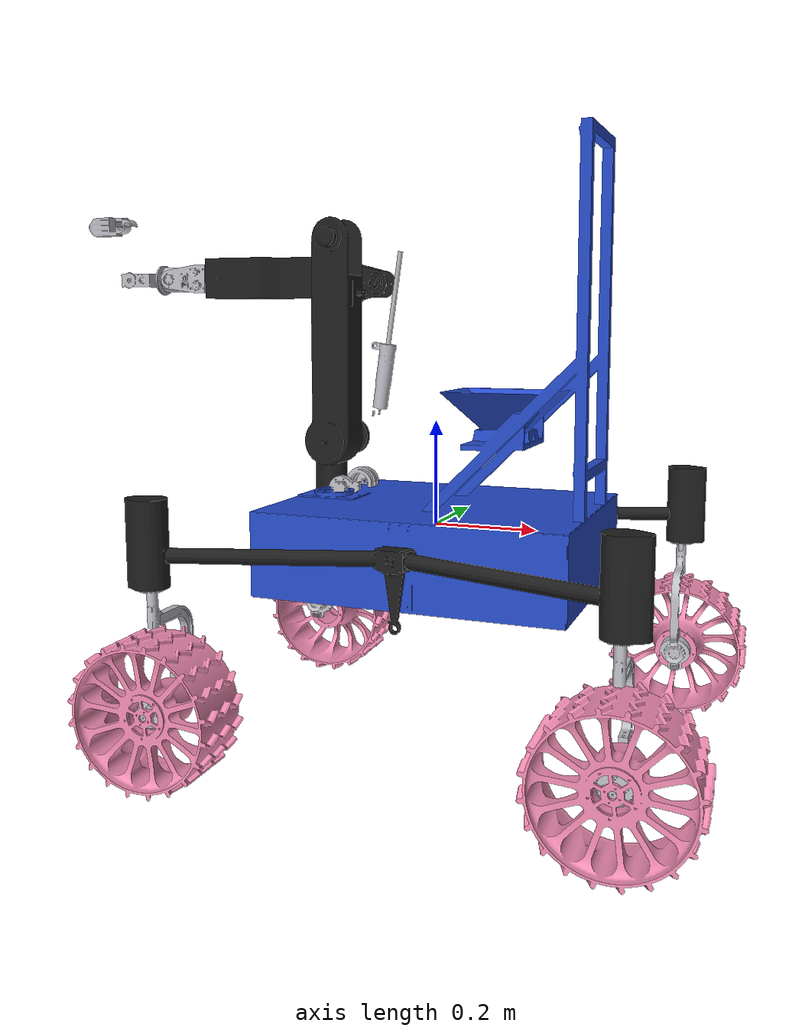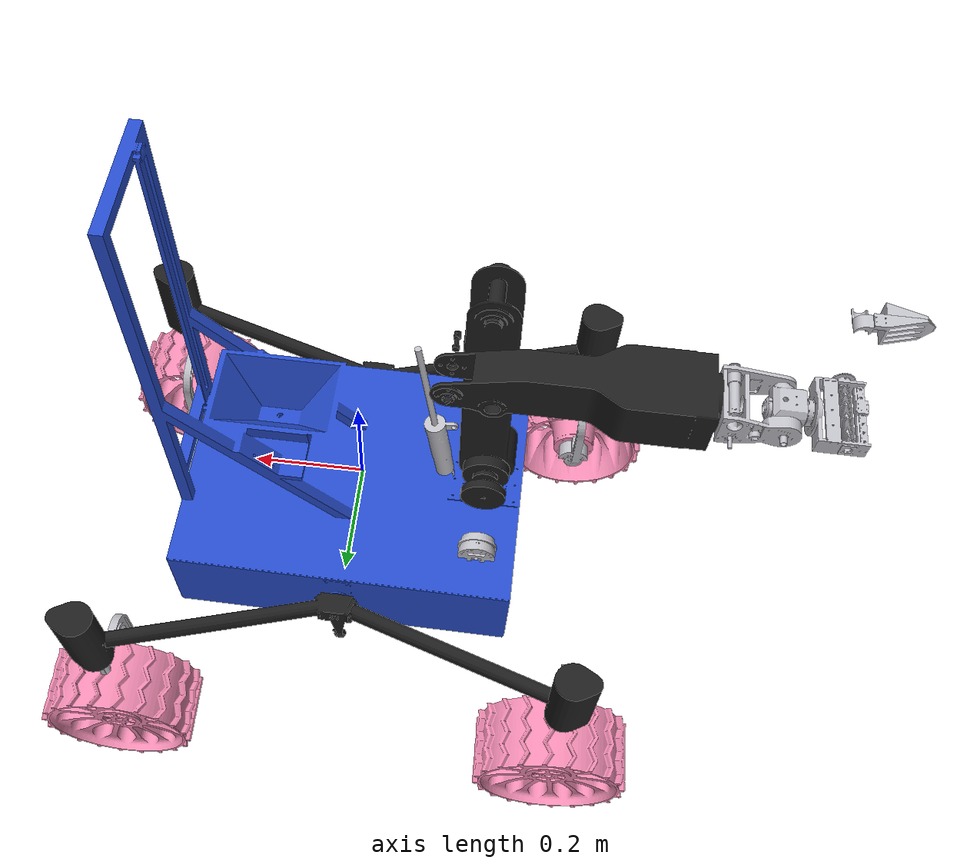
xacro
<?xml version="1.0"?>
<robot xmlns:xacro="http://www.ros.org/wiki/xacro" name="kerby">
    <xacro:arg name="initial_positions_file" default="initial_positions.yaml" />

    <!-- Import kerby urdf file -->
    <xacro:include filename="$(find Assemblage_description)/urdf/Assemblage.urdf.xacro" />

    <!-- Import control_xacro -->
    <xacro:include filename="kerby.ros2_control.xacro" />

    <xacro:kerby_arm_ros2_control name="KerbyArmSystem" initial_positions_file="$(arg initial_positions_file)"/>

    <xacro:kerby_base_ros2_control name="KerbyBaseSystem" initial_positions_file="$(arg initial_positions_file)"/>

</robot>

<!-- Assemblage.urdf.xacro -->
<robot name="kerby" xmlns:xacro="http://www.ros.org/wiki/xacro">

<xacro:include filename="$(find Assemblage_description)/urdf/materials.xacro" />
<xacro:include filename="$(find Assemblage_description)/urdf/Assemblage.trans" />
<xacro:include filename="$(find Assemblage_description)/urdf/Assemblage.gazebo" />

<xacro:property name="rpm_to_Radps" value="${2*pi/60.0}" />     <!-- rotations per minute to Rad per second conversion -->
<xacro:property name="velocity_scaling" value="1.0" />     <!-- allows to scale all max velocities down at once -->

<xacro:macro name="aaa_joint_limits" params="lower:=0.0 upper:=0.0 velocity:=${rpm_to_Radps} effort:=100.0">
  <limit lower="${lower}" upper="${upper}" velocity="${velocity}" effort="${effort}"/>
</xacro:macro>

<xacro:property name="joint1_limits">
  <xacro:aaa_joint_limits lower="${-1.5*pi}" upper="${1.5*pi}" velocity="${3 * rpm_to_Radps * velocity_scaling}" />
</xacro:property>

<xacro:property name="joint2_limits">
  <xacro:aaa_joint_limits lower="${-pi}" upper="${pi/2}" velocity="${1 * rpm_to_Radps * velocity_scaling}" />
</xacro:property>

<xacro:property name="joint3_limits">
  <xacro:aaa_joint_limits lower="${-pi/4}" upper="${pi/4}" velocity="${1.5 * rpm_to_Radps * velocity_scaling}" />
</xacro:property>

<xacro:property name="joint4_limits">
  <xacro:aaa_joint_limits lower="${-2*pi}" upper="${2*pi}" velocity="${6 * rpm_to_Radps * velocity_scaling}" />
</xacro:property>

<xacro:property name="joint5_limits">
  <xacro:aaa_joint_limits lower="${-pi/2}" upper="${pi/2}" velocity="${2 * rpm_to_Radps * velocity_scaling}" />
</xacro:property>

<xacro:property name="joint6_limits">
  <xacro:aaa_joint_limits lower="${-pi}" upper="${pi}" velocity="${6 * rpm_to_Radps * velocity_scaling}" />
</xacro:property>

<link name="base_link">
  <inertial>
    <origin xyz="0.05362398614035063 0.01974617698532859 0.037120813316089823" rpy="0 0 0"/>
    <mass value="6.257043020156179"/>
    <inertia ixx="0.340644" iyy="0.466541" izz="0.402706" ixy="0.000337" iyz="0.00055" ixz="-0.092411"/>
  </inertial>
  <visual>
    <origin xyz="0 0 0" rpy="0 0 0"/>
    <geometry>
      <mesh filename="package://Assemblage_description/meshes/base_link.stl" scale="0.001 0.001 0.001"/>
    </geometry>
    <material name="blue"/>
  </visual>
  <collision>
    <origin xyz="0 0 0" rpy="0 0 0"/>
    <geometry>
      <mesh filename="package://Assemblage_description/meshes/base_link.stl" scale="0.001 0.001 0.001"/>
    </geometry>
  </collision>
</link>

<link name="steering_1">
  <inertial>
    <origin xyz="-0.01189644601781037 -0.036027929982466456 -0.2129618322901442" rpy="0 0 0"/>
    <mass value="0.3543584805415501"/>
    <inertia ixx="0.003558" iyy="0.003121" izz="0.000562" ixy="2e-06" iyz="-0.000206" ixz="-0.000178"/>
  </inertial>
  <visual>
    <origin xyz="-0.421384 -0.393882 0.063562" rpy="0 0 0"/>
    <geometry>
      <mesh filename="package://Assemblage_description/meshes/steering_1.stl" scale="0.001 0.001 0.001"/>
    </geometry>
    <material name="silver"/>
  </visual>
  <collision>
    <origin xyz="-0.421384 -0.393882 0.063562" rpy="0 0 0"/>
    <geometry>
      <mesh filename="package://Assemblage_description/meshes/steering_1.stl" scale="0.001 0.001 0.001"/>
    </geometry>
  </collision>
</link>

<link name="steering_2">
  <inertial>
    <origin xyz="0.011896575272170529 0.03602765244982159 -0.21296112839152875" rpy="0 0 0"/>
    <mass value="0.3543584805415501"/>
    <inertia ixx="0.003558" iyy="0.003121" izz="0.000562" ixy="2e-06" iyz="0.000206" ixz="0.000178"/>
  </inertial>
  <visual>
    <origin xyz="-0.42341 0.353934 0.012408" rpy="0 0 0"/>
    <geometry>
      <mesh filename="package://Assemblage_description/meshes/steering_2.stl" scale="0.001 0.001 0.001"/>
    </geometry>
    <material name="silver"/>
  </visual>
  <collision>
    <origin xyz="-0.42341 0.353934 0.012408" rpy="0 0 0"/>
    <geometry>
      <mesh filename="package://Assemblage_description/meshes/steering_2.stl" scale="0.001 0.001 0.001"/>
    </geometry>
  </collision>
</link>

<link name="steering_3">
  <inertial>
    <origin xyz="0.011896795779964109 0.03602765244982109 -0.21296183229014454" rpy="0 0 0"/>
    <mass value="0.3543584805415501"/>
    <inertia ixx="0.003558" iyy="0.003121" izz="0.000562" ixy="2e-06" iyz="0.000206" ixz="0.000178"/>
  </inertial>
  <visual>
    <origin xyz="0.408171 0.353934 0.063562" rpy="0 0 0"/>
    <geometry>
      <mesh filename="package://Assemblage_description/meshes/steering_3.stl" scale="0.001 0.001 0.001"/>
    </geometry>
    <material name="silver"/>
  </visual>
  <collision>
    <origin xyz="0.408171 0.353934 0.063562" rpy="0 0 0"/>
    <geometry>
      <mesh filename="package://Assemblage_description/meshes/steering_3.stl" scale="0.001 0.001 0.001"/>
    </geometry>
  </collision>
</link>

<link name="steering_4">
  <inertial>
    <origin xyz="-0.011896225510015512 -0.036027929982466234 -0.21296112839152861" rpy="0 0 0"/>
    <mass value="0.3543584805415501"/>
    <inertia ixx="0.003558" iyy="0.003121" izz="0.000562" ixy="2e-06" iyz="-0.000206" ixz="-0.000178"/>
  </inertial>
  <visual>
    <origin xyz="0.410197 -0.393882 0.012408" rpy="0 0 0"/>
    <geometry>
      <mesh filename="package://Assemblage_description/meshes/steering_4.stl" scale="0.001 0.001 0.001"/>
    </geometry>
    <material name="silver"/>
  </visual>
  <collision>
    <origin xyz="0.410197 -0.393882 0.012408" rpy="0 0 0"/>
    <geometry>
      <mesh filename="package://Assemblage_description/meshes/steering_4.stl" scale="0.001 0.001 0.001"/>
    </geometry>
  </collision>
</link>

<link name="wheel3_1">
  <inertial>
    <origin xyz="0.0003394916280188287 -0.010196510227617639 -2.006330920018007e-05" rpy="0 0 0"/>
    <mass value="1.592763813314383"/>
    <inertia ixx="0.010896" iyy="0.018605" izz="0.010887" ixy="-0.000257" iyz="1.6e-05" ixz="-0.0"/>
  </inertial>
  <visual>
    <origin xyz="0.42733 -0.410572 0.281864" rpy="0 0 0"/>
    <geometry>
      <mesh filename="package://Assemblage_description/meshes/wheel3_1.stl" scale="0.001 0.001 0.001"/>
    </geometry>
    <material name="pink"/>
  </visual>
  <collision>
    <origin xyz="0.42733 -0.410572 0.281864" rpy="0 0 0"/>
    <geometry>
      <mesh filename="package://Assemblage_description/meshes/wheel3_1.stl" scale="0.001 0.001 0.001"/>
    </geometry>
  </collision>
</link>

<link name="wheel4_1">
  <inertial>
    <origin xyz="0.0003392711202230836 -0.010196510227618527 -1.9767207815879484e-05" rpy="0 0 0"/>
    <mass value="1.592763813314383"/>
    <inertia ixx="0.010896" iyy="0.018605" izz="0.010887" ixy="-0.000257" iyz="1.6e-05" ixz="-0.0"/>
  </inertial>
  <visual>
    <origin xyz="-0.404251 -0.410572 0.333019" rpy="0 0 0"/>
    <geometry>
      <mesh filename="package://Assemblage_description/meshes/wheel4_1.stl" scale="0.001 0.001 0.001"/>
    </geometry>
    <material name="pink"/>
  </visual>
  <collision>
    <origin xyz="-0.404251 -0.410572 0.333019" rpy="0 0 0"/>
    <geometry>
      <mesh filename="package://Assemblage_description/meshes/wheel4_1.stl" scale="0.001 0.001 0.001"/>
    </geometry>
  </collision>
</link>

<link name="wheel2_1">
  <inertial>
    <origin xyz="-0.0003399213580693172 0.010197232694972913 -1.9767207816323573e-05" rpy="0 0 0"/>
    <mass value="1.592763813314383"/>
    <inertia ixx="0.010896" iyy="0.018605" izz="0.010887" ixy="-0.000257" iyz="-1.6e-05" ixz="0.0"/>
  </inertial>
  <visual>
    <origin xyz="0.391037 0.370625 0.333019" rpy="0 0 0"/>
    <geometry>
      <mesh filename="package://Assemblage_description/meshes/wheel2_1.stl" scale="0.001 0.001 0.001"/>
    </geometry>
    <material name="pink"/>
  </visual>
  <collision>
    <origin xyz="0.391037 0.370625 0.333019" rpy="0 0 0"/>
    <geometry>
      <mesh filename="package://Assemblage_description/meshes/wheel2_1.stl" scale="0.001 0.001 0.001"/>
    </geometry>
  </collision>
</link>

<link name="wheel1_1">
  <inertial>
    <origin xyz="-0.0003391418658636458 0.010197232694973468 -2.0063309200568646e-05" rpy="0 0 0"/>
    <mass value="1.592763813314383"/>
    <inertia ixx="0.010896" iyy="0.018605" izz="0.010887" ixy="-0.000257" iyz="-1.6e-05" ixz="0.0"/>
  </inertial>
  <visual>
    <origin xyz="-0.440543 0.370625 0.281864" rpy="0 0 0"/>
    <geometry>
      <mesh filename="package://Assemblage_description/meshes/wheel1_1.stl" scale="0.001 0.001 0.001"/>
    </geometry>
    <material name="pink"/>
  </visual>
  <collision>
    <origin xyz="-0.440543 0.370625 0.281864" rpy="0 0 0"/>
    <geometry>
      <mesh filename="package://Assemblage_description/meshes/wheel1_1.stl" scale="0.001 0.001 0.001"/>
    </geometry>
  </collision>
</link>

<link name="hd_link2_1">
  <inertial>
    <origin xyz="0.007428383283974271 0.060838810370171845 0.14389716626077925" rpy="0 0 0"/>
    <mass value="2.4452075265656514"/>
    <inertia ixx="0.038674" iyy="0.03827" izz="0.003075" ixy="7.8e-05" iyz="0.001607" ixz="-0.00107"/>
  </inertial>
  <visual>
    <origin xyz="0.228643 0.037726 -0.152484" rpy="0 0 0"/>
    <geometry>
      <mesh filename="package://Assemblage_description/meshes/hd_link2_1.stl" scale="0.001 0.001 0.001"/>
    </geometry>
    <material name="black"/>
  </visual>
  <collision>
    <origin xyz="0.228643 0.037726 -0.152484" rpy="0 0 0"/>
    <geometry>
      <mesh filename="package://Assemblage_description/meshes/hd_link2_1.stl" scale="0.001 0.001 0.001"/>
    </geometry>
  </collision>
</link>

<link name="hd_link3_1">
  <inertial>
    <origin xyz="-0.18506431602380205 -0.028188690485378982 0.03515465538516083" rpy="0 0 0"/>
    <mass value="0.3993227194340243"/>
    <inertia ixx="0.000842" iyy="0.00625" izz="0.00637" ixy="4.5e-05" iyz="-5e-06" ixz="0.000238"/>
  </inertial>
  <visual>
    <origin xyz="0.2165 -0.050274 -0.552396" rpy="0 0 0"/>
    <geometry>
      <mesh filename="package://Assemblage_description/meshes/hd_link3_1.stl" scale="0.001 0.001 0.001"/>
    </geometry>
    <material name="black"/>
  </visual>
  <collision>
    <origin xyz="0.2165 -0.050274 -0.552396" rpy="0 0 0"/>
    <geometry>
      <mesh filename="package://Assemblage_description/meshes/hd_link3_1.stl" scale="0.001 0.001 0.001"/>
    </geometry>
  </collision>
</link>

<link name="hd_link4_1">
  <inertial>
    <origin xyz="-0.02651321084424607 0.002896584112952065 -0.0003217450612928996" rpy="0 0 0"/>
    <mass value="0.16590781468918114"/>
    <inertia ixx="0.000197" iyy="0.000349" izz="0.000476" ixy="3.9e-05" iyz="5e-06" ixz="4e-06"/>
  </inertial>
  <visual>
    <origin xyz="0.531508 -0.02063 -0.590536" rpy="0 0 0"/>
    <geometry>
      <mesh filename="package://Assemblage_description/meshes/hd_link4_1.stl" scale="0.001 0.001 0.001"/>
    </geometry>
    <material name="silver"/>
  </visual>
  <collision>
    <origin xyz="0.531508 -0.02063 -0.590536" rpy="0 0 0"/>
    <geometry>
      <mesh filename="package://Assemblage_description/meshes/hd_link4_1.stl" scale="0.001 0.001 0.001"/>
    </geometry>
  </collision>
</link>

<link name="hd_link5_1">
  <inertial>
    <origin xyz="-0.0032697164246294763 0.03846028201984416 -9.33050693235904e-05" rpy="0 0 0"/>
    <mass value="0.06877842327462745"/>
    <inertia ixx="4.9e-05" iyy="2.9e-05" izz="4.3e-05" ixy="1e-06" iyz="0.0" ixz="-0.0"/>
  </inertial>
  <visual>
    <origin xyz="0.625201 0.02137 -0.591679" rpy="0 0 0"/>
    <geometry>
      <mesh filename="package://Assemblage_description/meshes/hd_link5_1.stl" scale="0.001 0.001 0.001"/>
    </geometry>
    <material name="silver"/>
  </visual>
  <collision>
    <origin xyz="0.625201 0.02137 -0.591679" rpy="0 0 0"/>
    <geometry>
      <mesh filename="package://Assemblage_description/meshes/hd_link5_1.stl" scale="0.001 0.001 0.001"/>
    </geometry>
  </collision>
</link>

<link name="hd_link6_1">
  <inertial>
    <origin xyz="-0.03519419436746607 -0.0007187354689699374 0.0009221743273718497" rpy="0 0 0"/>
    <mass value="0.11153016933793788"/>
    <inertia ixx="0.000117" iyy="0.000166" izz="0.000263" ixy="-2e-06" iyz="-1e-06" ixz="1e-06"/>
  </inertial>
  <visual>
    <origin xyz="0.652201 -0.02059 -0.591797" rpy="0 0 0"/>
    <geometry>
      <mesh filename="package://Assemblage_description/meshes/hd_link6_1.stl" scale="0.001 0.001 0.001"/>
    </geometry>
    <material name="silver"/>
  </visual>
  <collision>
    <origin xyz="0.652201 -0.02059 -0.591797" rpy="0 0 0"/>
    <geometry>
      <mesh filename="package://Assemblage_description/meshes/hd_link6_1.stl" scale="0.001 0.001 0.001"/>
    </geometry>
  </collision>
</link>

<link name="hd_finger2_1">
  <inertial>
    <origin xyz="0.47666706754454413 -0.7361417133269437 -0.01622358994727202" rpy="0 0 0"/>
    <mass value="0.025342855198124774"/>
    <inertia ixx="4e-06" iyy="1.8e-05" izz="1.6e-05" ixy="-2e-06" iyz="-0.0" ixz="-2e-06"/>
  </inertial>
  <visual>
    <origin xyz="1.231487 -0.764267 -0.611515" rpy="0 0 0"/>
    <geometry>
      <mesh filename="package://Assemblage_description/meshes/hd_finger2_1.stl" scale="0.001 0.001 0.001"/>
    </geometry>
    <material name="silver"/>
  </visual>
  <collision>
    <origin xyz="1.231487 -0.764267 -0.611515" rpy="0 0 0"/>
    <geometry>
      <mesh filename="package://Assemblage_description/meshes/hd_finger2_1.stl" scale="0.001 0.001 0.001"/>
    </geometry>
  </collision>
</link>

<link name="hd_finger1_1">
  <inertial>
    <origin xyz="0.4527983426832546 -0.7504874421753438 -0.06638458975098571" rpy="0 0 0"/>
    <mass value="0.025342855198124774"/>
    <inertia ixx="4e-06" iyy="1.8e-05" izz="1.6e-05" ixy="2e-06" iyz="-0.0" ixz="2e-06"/>
  </inertial>
  <visual>
    <origin xyz="1.208101 -0.764188 -0.655601" rpy="0 0 0"/>
    <geometry>
      <mesh filename="package://Assemblage_description/meshes/hd_finger1_1.stl" scale="0.001 0.001 0.001"/>
    </geometry>
    <material name="silver"/>
  </visual>
  <collision>
    <origin xyz="1.208101 -0.764188 -0.655601" rpy="0 0 0"/>
    <geometry>
      <mesh filename="package://Assemblage_description/meshes/hd_finger1_1.stl" scale="0.001 0.001 0.001"/>
    </geometry>
  </collision>
</link>

<link name="hd_motor_j3_1">
  <inertial>
    <origin xyz="-0.3146867524268133 0.14188869096939155 0.25591208107402835" rpy="0 0 0"/>
    <mass value="0.11925838600046076"/>
    <inertia ixx="0.00051" iyy="0.000525" izz="2.9e-05" ixy="-0.0" iyz="-0.0" ixz="-8.7e-05"/>
  </inertial>
  <visual>
    <origin xyz="-0.173508 0.122615 -0.149258" rpy="0 0 0"/>
    <geometry>
      <mesh filename="package://Assemblage_description/meshes/hd_motor_j3_1.stl" scale="0.001 0.001 0.001"/>
    </geometry>
    <material name="silver"/>
  </visual>
  <collision>
    <origin xyz="-0.173508 0.122615 -0.149258" rpy="0 0 0"/>
    <geometry>
      <mesh filename="package://Assemblage_description/meshes/hd_motor_j3_1.stl" scale="0.001 0.001 0.001"/>
    </geometry>
  </collision>
</link>

<link name="pivot_droit_1">
  <inertial>
    <origin xyz="0.0009668399350314201 0.11623489359260658 0.013375805290350871" rpy="0 0 0"/>
    <mass value="1.6615144825592312"/>
    <inertia ixx="0.007103" iyy="0.220618" izz="0.220639" ixy="-5.6e-05" iyz="-0.000815" ixz="0.013196"/>
  </inertial>
  <visual>
    <origin xyz="-0.006607 -0.250474 0.021516" rpy="0 0 0"/>
    <geometry>
      <mesh filename="package://Assemblage_description/meshes/pivot_droit_1.stl" scale="0.001 0.001 0.001"/>
    </geometry>
    <material name="black"/>
  </visual>
  <collision>
    <origin xyz="-0.006607 -0.250474 0.021516" rpy="0 0 0"/>
    <geometry>
      <mesh filename="package://Assemblage_description/meshes/pivot_droit_1.stl" scale="0.001 0.001 0.001"/>
    </geometry>
  </collision>
</link>

<link name="pivot_gauche_1">
  <inertial>
    <origin xyz="-0.0009674901728771402 -0.11623517112525206 0.013375805290350576" rpy="0 0 0"/>
    <mass value="1.6615144825592312"/>
    <inertia ixx="0.007103" iyy="0.220618" izz="0.220639" ixy="-5.6e-05" iyz="0.000815" ixz="-0.013196"/>
  </inertial>
  <visual>
    <origin xyz="-0.006607 0.210526 0.021516" rpy="0 0 0"/>
    <geometry>
      <mesh filename="package://Assemblage_description/meshes/pivot_gauche_1.stl" scale="0.001 0.001 0.001"/>
    </geometry>
    <material name="black"/>
  </visual>
  <collision>
    <origin xyz="-0.006607 0.210526 0.021516" rpy="0 0 0"/>
    <geometry>
      <mesh filename="package://Assemblage_description/meshes/pivot_gauche_1.stl" scale="0.001 0.001 0.001"/>
    </geometry>
  </collision>
</link>

<link name="hd_link1_1">
  <inertial>
    <origin xyz="0.0001907779404468346 0.014210297972432132 0.0484216801173539" rpy="0 0 0"/>
    <mass value="0.3391136619658369"/>
    <inertia ixx="0.001801" iyy="0.001217" izz="0.00078" ixy="1e-05" iyz="-0.000142" ixz="-8e-06"/>
  </inertial>
  <visual>
    <origin xyz="0.228643 -0.019974 -0.035484" rpy="0 0 0"/>
    <geometry>
      <mesh filename="package://Assemblage_description/meshes/hd_link1_1.stl" scale="0.001 0.001 0.001"/>
    </geometry>
    <material name="silver"/>
  </visual>
  <collision>
    <origin xyz="0.228643 -0.019974 -0.035484" rpy="0 0 0"/>
    <geometry>
      <mesh filename="package://Assemblage_description/meshes/hd_link1_1.stl" scale="0.001 0.001 0.001"/>
    </geometry>
  </collision>
</link>

<joint name="steering1" type="continuous">
  <origin xyz="0.414777 0.143408 -0.042046" rpy="0 0 0"/>
  <parent link="pivot_droit_1"/>
  <child link="steering_1"/>
  <axis xyz="-0.061399 0.0 -0.998113"/>
</joint>

<joint name="steering2" type="continuous">
  <origin xyz="0.416803 -0.143408 0.009108" rpy="0 0 0"/>
  <parent link="pivot_gauche_1"/>
  <child link="steering_2"/>
  <axis xyz="-0.061399 0.0 0.998113"/>
</joint>

<joint name="steering3" type="continuous">
  <origin xyz="-0.414778 -0.143408 -0.042046" rpy="0 0 0"/>
  <parent link="pivot_gauche_1"/>
  <child link="steering_3"/>
  <axis xyz="0.061399 -0.0 -0.998113"/>
</joint>

<joint name="steering4" type="continuous">
  <origin xyz="-0.416804 0.143408 0.009108" rpy="0 0 0"/>
  <parent link="pivot_droit_1"/>
  <child link="steering_4"/>
  <axis xyz="0.061399 -0.0 0.998113"/>
</joint>

<joint name="driving4" type="continuous">
  <origin xyz="-0.017133 0.01669 -0.269456" rpy="0 0 0"/>
  <parent link="steering_4"/>
  <child link="wheel3_1"/>
  <axis xyz="-0.033267 0.999444 0.002046"/>
</joint>

<joint name="driving1" type="continuous">
  <origin xyz="-0.017133 0.01669 -0.269457" rpy="0 0 0"/>
  <parent link="steering_1"/>
  <child link="wheel4_1"/>
  <axis xyz="-0.033267 0.999444 0.002046"/>
</joint>

<joint name="driving3" type="continuous">
  <origin xyz="0.017134 -0.016691 -0.269457" rpy="0 0 0"/>
  <parent link="steering_3"/>
  <child link="wheel2_1"/>
  <axis xyz="0.033267 -0.999444 0.002046"/>
</joint>

<joint name="driving2" type="continuous">
  <origin xyz="0.017133 -0.016691 -0.269456" rpy="0 0 0"/>
  <parent link="steering_2"/>
  <child link="wheel1_1"/>
  <axis xyz="0.033267 -0.999444 0.002046"/>
</joint>

<joint name="joint2" type="revolute">
  <origin xyz="0.0 -0.0577 0.117" rpy="0 0 0"/>
  <parent link="hd_link1_1"/>
  <child link="hd_link2_1"/>
  <axis xyz="0.0 1.0 0.0"/>
  <xacro:insert_block name="joint2_limits" />
</joint>

<joint name="joint3" type="revolute">
  <origin xyz="0.012143 0.088 0.399912" rpy="0 0 0"/>
  <parent link="hd_link2_1"/>
  <child link="hd_link3_1"/>
  <axis xyz="-0.0 1.0 0.0"/>
  <xacro:insert_block name="joint3_limits" />
</joint>

<joint name="joint4" type="revolute">
  <origin xyz="-0.315008 -0.029644 0.03814" rpy="0 0 0"/>
  <parent link="hd_link3_1"/>
  <child link="hd_link4_1"/>
  <axis xyz="0.999926 0.0 -0.012203"/>
  <xacro:insert_block name="joint4_limits" />
</joint>

<joint name="joint5" type="revolute">
  <origin xyz="-0.093693 -0.042 0.001143" rpy="0 0 0"/>
  <parent link="hd_link4_1"/>
  <child link="hd_link5_1"/>
  <axis xyz="0.0 -1.0 0.0"/>
  <xacro:insert_block name="joint5_limits" />
</joint>

<joint name="joint6" type="revolute">
  <origin xyz="-0.027 0.04196 0.000118" rpy="0 0 0"/>
  <parent link="hd_link5_1"/>
  <child link="hd_link6_1"/>
  <axis xyz="-0.99999 -0.0 0.00438"/>
  <xacro:insert_block name="joint6_limits" />
</joint>

<joint name="finger1" type="prismatic">
  <origin xyz="-0.579286 0.743677 0.019718" rpy="0 0 0"/>
  <parent link="hd_link6_1"/>
  <child link="hd_finger2_1"/>
  <axis xyz="0.007905 0.999801 0.018314"/>
  <limit upper="0.0" lower="0.0" effort="100" velocity="100"/>
</joint>

<joint name="finger2" type="prismatic">
  <origin xyz="-0.5559 0.743598 0.063804" rpy="0 0 0"/>
  <parent link="hd_link6_1"/>
  <child link="hd_finger1_1"/>
  <axis xyz="0.007905 0.999801 0.018314"/>
  <limit upper="0.0" lower="0.0" effort="100" velocity="100"/>
  <mimic joint="finger1" multiplier="-1" offset="0"/>
</joint>

<joint name="moteurJ3" type="fixed">
  <origin xyz="0.402151 -0.084889 -0.003226" rpy="0 0 0"/>
  <parent link="hd_link2_1"/>
  <child link="hd_motor_j3_1"/>
</joint>

<joint name="pivot_gauche" type="continuous">
  <origin xyz="0.006607 0.250474 -0.021516" rpy="0 0 0"/>
  <parent link="base_link"/>
  <child link="pivot_droit_1"/>
  <axis xyz="-0.0 1.0 0.0"/>
</joint>

<joint name="pivot_droit" type="continuous">
  <origin xyz="0.006607 -0.210526 -0.021516" rpy="0 0 0"/>
  <parent link="base_link"/>
  <child link="pivot_gauche_1"/>
  <axis xyz="0.0 1.0 0.0"/>
</joint>

<joint name="joint1" type="revolute">
  <origin xyz="-0.228643 0.019974 0.035484" rpy="0 0 0"/>
  <parent link="base_link"/>
  <child link="hd_link1_1"/>
  <axis xyz="-0.0 0.0 -1.0"/>
  <xacro:insert_block name="joint1_limits" />
</joint>

</robot>

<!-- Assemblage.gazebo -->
<robot name="kerby" xmlns:xacro="http://www.ros.org/wiki/xacro" >

<xacro:property name="body_color" value="Gazebo/Silver" />

<gazebo>
  <plugin name="control" filename="libgazebo_ros_control.so"/>
</gazebo>
<gazebo reference="base_link">
  <material>${body_color}</material>
  <mu1>0.2</mu1>
  <mu2>0.2</mu2>
  <selfCollide>true</selfCollide>
  <gravity>true</gravity>
</gazebo>

<gazebo reference="steering_1">
  <material>${body_color}</material>
  <mu1>0.2</mu1>
  <mu2>0.2</mu2>
  <selfCollide>true</selfCollide>
</gazebo>

<gazebo reference="steering_2">
  <material>${body_color}</material>
  <mu1>0.2</mu1>
  <mu2>0.2</mu2>
  <selfCollide>true</selfCollide>
</gazebo>

<gazebo reference="steering_3">
  <material>${body_color}</material>
  <mu1>0.2</mu1>
  <mu2>0.2</mu2>
  <selfCollide>true</selfCollide>
</gazebo>

<gazebo reference="steering_4">
  <material>${body_color}</material>
  <mu1>0.2</mu1>
  <mu2>0.2</mu2>
  <selfCollide>true</selfCollide>
</gazebo>

<gazebo reference="wheel3_1">
  <material>${body_color}</material>
  <mu1>0.2</mu1>
  <mu2>0.2</mu2>
  <selfCollide>true</selfCollide>
</gazebo>

<gazebo reference="wheel4_1">
  <material>${body_color}</material>
  <mu1>0.2</mu1>
  <mu2>0.2</mu2>
  <selfCollide>true</selfCollide>
</gazebo>

<gazebo reference="wheel2_1">
  <material>${body_color}</material>
  <mu1>0.2</mu1>
  <mu2>0.2</mu2>
  <selfCollide>true</selfCollide>
</gazebo>

<gazebo reference="wheel1_1">
  <material>${body_color}</material>
  <mu1>0.2</mu1>
  <mu2>0.2</mu2>
  <selfCollide>true</selfCollide>
</gazebo>

<gazebo reference="hd_link2_1">
  <material>${body_color}</material>
  <mu1>0.2</mu1>
  <mu2>0.2</mu2>
  <selfCollide>true</selfCollide>
</gazebo>

<gazebo reference="hd_link3_1">
  <material>${body_color}</material>
  <mu1>0.2</mu1>
  <mu2>0.2</mu2>
  <selfCollide>true</selfCollide>
</gazebo>

<gazebo reference="hd_link4_1">
  <material>${body_color}</material>
  <mu1>0.2</mu1>
  <mu2>0.2</mu2>
  <selfCollide>true</selfCollide>
</gazebo>

<gazebo reference="hd_link5_1">
  <material>${body_color}</material>
  <mu1>0.2</mu1>
  <mu2>0.2</mu2>
  <selfCollide>true</selfCollide>
</gazebo>

<gazebo reference="hd_link6_1">
  <material>${body_color}</material>
  <mu1>0.2</mu1>
  <mu2>0.2</mu2>
  <selfCollide>true</selfCollide>
</gazebo>

<gazebo reference="hd_finger2_1">
  <material>${body_color}</material>
  <mu1>0.2</mu1>
  <mu2>0.2</mu2>
  <selfCollide>true</selfCollide>
</gazebo>

<gazebo reference="hd_finger1_1">
  <material>${body_color}</material>
  <mu1>0.2</mu1>
  <mu2>0.2</mu2>
  <selfCollide>true</selfCollide>
</gazebo>

<gazebo reference="hd_motor_j3_1">
  <material>${body_color}</material>
  <mu1>0.2</mu1>
  <mu2>0.2</mu2>
  <selfCollide>true</selfCollide>
</gazebo>

<gazebo reference="pivot_droit_1">
  <material>${body_color}</material>
  <mu1>0.2</mu1>
  <mu2>0.2</mu2>
  <selfCollide>true</selfCollide>
</gazebo>

<gazebo reference="pivot_gauche_1">
  <material>${body_color}</material>
  <mu1>0.2</mu1>
  <mu2>0.2</mu2>
  <selfCollide>true</selfCollide>
</gazebo>

<gazebo reference="hd_link1_1">
  <material>${body_color}</material>
  <mu1>0.2</mu1>
  <mu2>0.2</mu2>
  <selfCollide>true</selfCollide>
</gazebo>

</robot>
